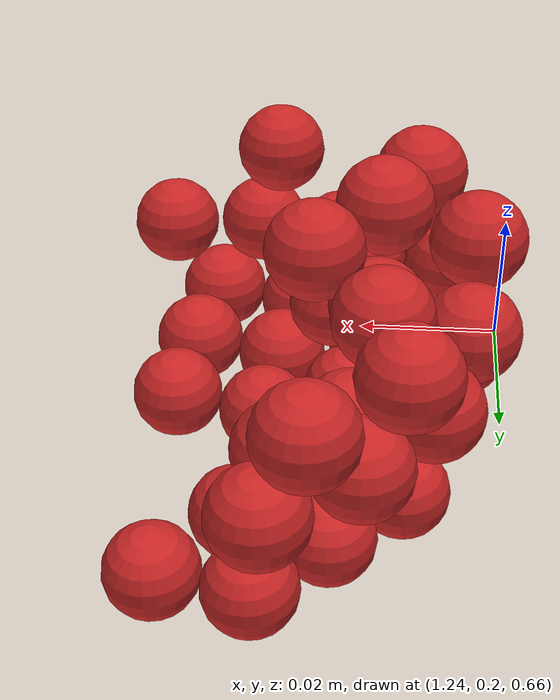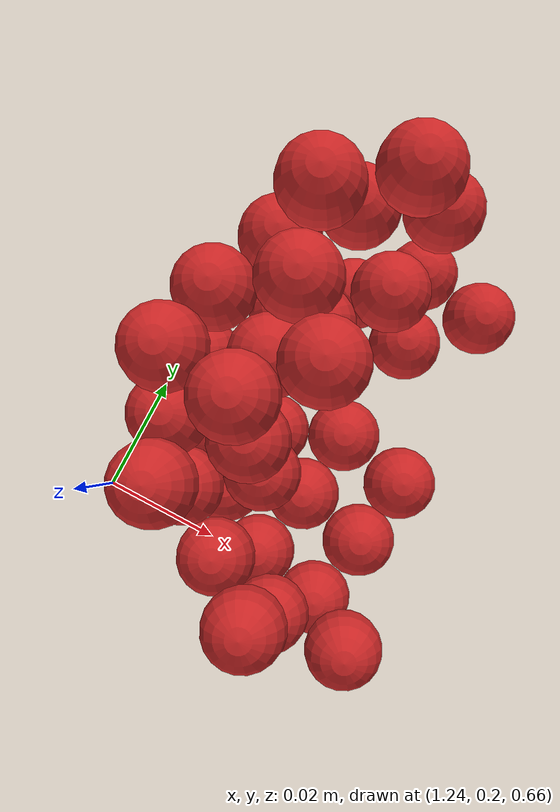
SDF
<sdf version="1.4">
 <world name="default">
  <model name="ground_plane">
   <static>1</static>
   <link name="link">
    <collision name="collision">
     <geometry><plane><normal>0 0 1</normal><size>100 100</size></plane></geometry>
     <surface><friction><ode><mu>100</mu><mu2>50</mu2></ode></friction></surface>
    </collision>
    <visual name="visual">
     <cast_shadows>0</cast_shadows>
     <geometry><plane><normal>0 0 1</normal><size>100 100</size></plane></geometry>
     <material>
      <script><uri>file://media/materials/scripts/gazebo.material</uri><name>Gazebo/Grey</name></script>
     </material>
    </visual>
    <velocity_decay><linear>0</linear><angular>0</angular></velocity_decay>
   </link>
  </model>
  <model name="sphere1">
   <pose>-0.033563 -0.052771 -0.021208 -0.03485 0.01136 -0.002758</pose>
   <link name="link">
    <pose>1.28814 0.232149 0.722288 0 -0 0</pose>
    <inertial>
     <mass>0.001</mass>
     <inertia><ixx>0.004</ixx><ixy>0</ixy><ixz>0</ixz><iyy>0.004</iyy><iyz>0</iyz><izz>0.004</izz></inertia>
    </inertial>
    <collision name="collision">
     <surface>
      <contact><ode><kp>1e+10</kp><kd>1</kd></ode></contact>
      <friction><ode><mu>0.01</mu><mu2>0.01</mu2></ode></friction>
     </surface>
     <geometry><sphere><radius>0.006</radius></sphere></geometry>
    </collision>
    <visual name="visual">
     <geometry><sphere><radius>0.006</radius></sphere></geometry>
     <material>
      <script><uri>file://media/materials/scripts/gazebo.material</uri><name>Gazebo/Red</name></script>
     </material>
    </visual>
    <velocity_decay><linear>0</linear><angular>0</angular></velocity_decay>
   </link>
   <static>0</static>
  </model>
  <model name="sphere2">
   <pose>-0.050173 -0.010075 -0.040103 0.01037 -0.001392 0.001848</pose>
   <link name="link">
    <pose>1.30014 0.232149 0.722288 0 -0 0</pose>
    <inertial>
     <mass>0.001</mass>
     <inertia><ixx>0.004</ixx><ixy>0</ixy><ixz>0</ixz><iyy>0.004</iyy><iyz>0</iyz><izz>0.004</izz></inertia>
    </inertial>
    <collision name="collision">
     <surface>
      <contact><ode><kp>1e+10</kp><kd>1</kd></ode></contact>
      <friction><ode><mu>0.01</mu><mu2>0.01</mu2></ode></friction>
     </surface>
     <geometry><sphere><radius>0.006</radius></sphere></geometry>
    </collision>
    <visual name="visual">
     <geometry><sphere><radius>0.006</radius></sphere></geometry>
     <material>
      <script><uri>file://media/materials/scripts/gazebo.material</uri><name>Gazebo/Red</name></script>
     </material>
    </visual>
    <velocity_decay><linear>0</linear><angular>0</angular></velocity_decay>
   </link>
   <static>0</static>
  </model>
  <model name="sphere3">
   <pose>-0.028546 -0.044237 -0.027117 -0.0037 0.01088 0.004462</pose>
   <link name="link">
    <pose>1.27614 0.244149 0.722288 0 -0 0</pose>
    <inertial>
     <mass>0.001</mass>
     <inertia><ixx>0.004</ixx><ixy>0</ixy><ixz>0</ixz><iyy>0.004</iyy><iyz>0</iyz><izz>0.004</izz></inertia>
    </inertial>
    <collision name="collision">
     <surface>
      <contact><ode><kp>1e+10</kp><kd>1</kd></ode></contact>
      <friction><ode><mu>0.01</mu><mu2>0.01</mu2></ode></friction>
     </surface>
     <geometry><sphere><radius>0.006</radius></sphere></geometry>
    </collision>
    <visual name="visual">
     <geometry><sphere><radius>0.006</radius></sphere></geometry>
     <material>
      <script><uri>file://media/materials/scripts/gazebo.material</uri><name>Gazebo/Red</name></script>
     </material>
    </visual>
    <velocity_decay><linear>0</linear><angular>0</angular></velocity_decay>
   </link>
   <static>0</static>
  </model>
  <model name="sphere5">
   <pose>-0.028078 -0.06221 -0.053725 -0.030292 -0.005125 -0.000564</pose>
   <link name="link">
    <pose>1.30014 0.244149 0.722288 0 -0 0</pose>
    <inertial>
     <mass>0.001</mass>
     <inertia><ixx>0.004</ixx><ixy>0</ixy><ixz>0</ixz><iyy>0.004</iyy><iyz>0</iyz><izz>0.004</izz></inertia>
    </inertial>
    <collision name="collision">
     <surface>
      <contact><ode><kp>1e+10</kp><kd>1</kd></ode></contact>
      <friction><ode><mu>0.01</mu><mu2>0.01</mu2></ode></friction>
     </surface>
     <geometry><sphere><radius>0.006</radius></sphere></geometry>
    </collision>
    <visual name="visual">
     <geometry><sphere><radius>0.006</radius></sphere></geometry>
     <material>
      <script><uri>file://media/materials/scripts/gazebo.material</uri><name>Gazebo/Red</name></script>
     </material>
    </visual>
    <velocity_decay><linear>0</linear><angular>0</angular></velocity_decay>
   </link>
   <static>0</static>
  </model>
  <model name="sphere6">
   <pose>-0.032901 -0.03095 -0.022914 -0.000748 0.003173 -0.000882</pose>
   <link name="link">
    <pose>1.27614 0.256149 0.722288 0 -0 0</pose>
    <inertial>
     <mass>0.001</mass>
     <inertia><ixx>0.004</ixx><ixy>0</ixy><ixz>0</ixz><iyy>0.004</iyy><iyz>0</iyz><izz>0.004</izz></inertia>
    </inertial>
    <collision name="collision">
     <surface>
      <contact><ode><kp>1e+10</kp><kd>1</kd></ode></contact>
      <friction><ode><mu>0.01</mu><mu2>0.01</mu2></ode></friction>
     </surface>
     <geometry><sphere><radius>0.006</radius></sphere></geometry>
    </collision>
    <visual name="visual">
     <geometry><sphere><radius>0.006</radius></sphere></geometry>
     <material>
      <script><uri>file://media/materials/scripts/gazebo.material</uri><name>Gazebo/Red</name></script>
     </material>
    </visual>
    <velocity_decay><linear>0</linear><angular>0</angular></velocity_decay>
   </link>
   <static>0</static>
  </model>
  <model name="sphere7">
   <pose>-0.045309 -0.013871 -0.03616 0.003074 0.015054 0.000154</pose>
   <link name="link">
    <pose>1.28814 0.256149 0.722288 0 -0 0</pose>
    <inertial>
     <mass>0.001</mass>
     <inertia><ixx>0.004</ixx><ixy>0</ixy><ixz>0</ixz><iyy>0.004</iyy><iyz>0</iyz><izz>0.004</izz></inertia>
    </inertial>
    <collision name="collision">
     <surface>
      <contact><ode><kp>1e+10</kp><kd>1</kd></ode></contact>
      <friction><ode><mu>0.01</mu><mu2>0.01</mu2></ode></friction>
     </surface>
     <geometry><sphere><radius>0.006</radius></sphere></geometry>
    </collision>
    <visual name="visual">
     <geometry><sphere><radius>0.006</radius></sphere></geometry>
     <material>
      <script><uri>file://media/materials/scripts/gazebo.material</uri><name>Gazebo/Red</name></script>
     </material>
    </visual>
    <velocity_decay><linear>0</linear><angular>0</angular></velocity_decay>
   </link>
   <static>0</static>
  </model>
  <model name="sphere8">
   <pose>-0.018767 -0.053673 -0.057546 0.003739 -0.001351 0.000569</pose>
   <link name="link">
    <pose>1.30014 0.256149 0.722288 0 -0 0</pose>
    <inertial>
     <mass>0.001</mass>
     <inertia><ixx>0.004</ixx><ixy>0</ixy><ixz>0</ixz><iyy>0.004</iyy><iyz>0</iyz><izz>0.004</izz></inertia>
    </inertial>
    <collision name="collision">
     <surface>
      <contact><ode><kp>1e+10</kp><kd>1</kd></ode></contact>
      <friction><ode><mu>0.01</mu><mu2>0.01</mu2></ode></friction>
     </surface>
     <geometry><sphere><radius>0.006</radius></sphere></geometry>
    </collision>
    <visual name="visual">
     <geometry><sphere><radius>0.006</radius></sphere></geometry>
     <material>
      <script><uri>file://media/materials/scripts/gazebo.material</uri><name>Gazebo/Red</name></script>
     </material>
    </visual>
    <velocity_decay><linear>0</linear><angular>0</angular></velocity_decay>
   </link>
   <static>0</static>
  </model>
  <model name="sphere10">
   <pose>-0.044418 -0.017472 -0.045919 -0.00333 0.011076 0.00042</pose>
   <link name="link">
    <pose>1.28814 0.232149 0.734288 0 -0 0</pose>
    <inertial>
     <mass>0.001</mass>
     <inertia><ixx>0.004</ixx><ixy>0</ixy><ixz>0</ixz><iyy>0.004</iyy><iyz>0</iyz><izz>0.004</izz></inertia>
    </inertial>
    <collision name="collision">
     <surface>
      <contact><ode><kp>1e+10</kp><kd>1</kd></ode></contact>
      <friction><ode><mu>0.01</mu><mu2>0.01</mu2></ode></friction>
     </surface>
     <geometry><sphere><radius>0.006</radius></sphere></geometry>
    </collision>
    <visual name="visual">
     <geometry><sphere><radius>0.006</radius></sphere></geometry>
     <material>
      <script><uri>file://media/materials/scripts/gazebo.material</uri><name>Gazebo/Red</name></script>
     </material>
    </visual>
    <velocity_decay><linear>0</linear><angular>0</angular></velocity_decay>
   </link>
   <static>0</static>
  </model>
  <model name="sphere11">
   <pose>-0.052728 -0.062204 -0.032076 -0.055371 0.015929 -0.000204</pose>
   <link name="link">
    <pose>1.30014 0.232149 0.734288 0 -0 0</pose>
    <inertial>
     <mass>0.001</mass>
     <inertia><ixx>0.004</ixx><ixy>0</ixy><ixz>0</ixz><iyy>0.004</iyy><iyz>0</iyz><izz>0.004</izz></inertia>
    </inertial>
    <collision name="collision">
     <surface>
      <contact><ode><kp>1e+10</kp><kd>1</kd></ode></contact>
      <friction><ode><mu>0.01</mu><mu2>0.01</mu2></ode></friction>
     </surface>
     <geometry><sphere><radius>0.006</radius></sphere></geometry>
    </collision>
    <visual name="visual">
     <geometry><sphere><radius>0.006</radius></sphere></geometry>
     <material>
      <script><uri>file://media/materials/scripts/gazebo.material</uri><name>Gazebo/Red</name></script>
     </material>
    </visual>
    <velocity_decay><linear>0</linear><angular>0</angular></velocity_decay>
   </link>
   <static>0</static>
  </model>
  <model name="sphere14">
   <pose>-0.015831 -0.045538 -0.065508 -0.018202 -0.002482 0.000292</pose>
   <link name="link">
    <pose>1.30014 0.244149 0.734288 0 -0 0</pose>
    <inertial>
     <mass>0.001</mass>
     <inertia><ixx>0.004</ixx><ixy>0</ixy><ixz>0</ixz><iyy>0.004</iyy><iyz>0</iyz><izz>0.004</izz></inertia>
    </inertial>
    <collision name="collision">
     <surface>
      <contact><ode><kp>1e+10</kp><kd>1</kd></ode></contact>
      <friction><ode><mu>0.01</mu><mu2>0.01</mu2></ode></friction>
     </surface>
     <geometry><sphere><radius>0.006</radius></sphere></geometry>
    </collision>
    <visual name="visual">
     <geometry><sphere><radius>0.006</radius></sphere></geometry>
     <material>
      <script><uri>file://media/materials/scripts/gazebo.material</uri><name>Gazebo/Red</name></script>
     </material>
    </visual>
    <velocity_decay><linear>0</linear><angular>0</angular></velocity_decay>
   </link>
   <static>0</static>
  </model>
  <model name="sphere16">
   <pose>-0.032975 0.000135 -0.056876 0.010404 0.009764 -0.000229</pose>
   <link name="link">
    <pose>1.28814 0.256149 0.734288 0 -0 0</pose>
    <inertial>
     <mass>0.001</mass>
     <inertia><ixx>0.004</ixx><ixy>0</ixy><ixz>0</ixz><iyy>0.004</iyy><iyz>0</iyz><izz>0.004</izz></inertia>
    </inertial>
    <collision name="collision">
     <surface>
      <contact><ode><kp>1e+10</kp><kd>1</kd></ode></contact>
      <friction><ode><mu>0.01</mu><mu2>0.01</mu2></ode></friction>
     </surface>
     <geometry><sphere><radius>0.006</radius></sphere></geometry>
    </collision>
    <visual name="visual">
     <geometry><sphere><radius>0.006</radius></sphere></geometry>
     <material>
      <script><uri>file://media/materials/scripts/gazebo.material</uri><name>Gazebo/Red</name></script>
     </material>
    </visual>
    <velocity_decay><linear>0</linear><angular>0</angular></velocity_decay>
   </link>
   <static>0</static>
  </model>
  <model name="sphere17">
   <pose>-0.033035 0.015816 -0.044256 0.023969 0.021809 0.000223</pose>
   <link name="link">
    <pose>1.30014 0.256149 0.734288 0 -0 0</pose>
    <inertial>
     <mass>0.001</mass>
     <inertia><ixx>0.004</ixx><ixy>0</ixy><ixz>0</ixz><iyy>0.004</iyy><iyz>0</iyz><izz>0.004</izz></inertia>
    </inertial>
    <collision name="collision">
     <surface>
      <contact><ode><kp>1e+10</kp><kd>1</kd></ode></contact>
      <friction><ode><mu>0.01</mu><mu2>0.01</mu2></ode></friction>
     </surface>
     <geometry><sphere><radius>0.006</radius></sphere></geometry>
    </collision>
    <visual name="visual">
     <geometry><sphere><radius>0.006</radius></sphere></geometry>
     <material>
      <script><uri>file://media/materials/scripts/gazebo.material</uri><name>Gazebo/Red</name></script>
     </material>
    </visual>
    <velocity_decay><linear>0</linear><angular>0</angular></velocity_decay>
   </link>
   <static>0</static>
  </model>
  <model name="sphere18">
   <pose>-0.03367 -0.007862 -0.06187 -0.005235 0.01192 0.000236</pose>
   <link name="link">
    <pose>1.27614 0.232149 0.746288 0 -0 0</pose>
    <inertial>
     <mass>0.001</mass>
     <inertia><ixx>0.004</ixx><ixy>0</ixy><ixz>0</ixz><iyy>0.004</iyy><iyz>0</iyz><izz>0.004</izz></inertia>
    </inertial>
    <collision name="collision">
     <surface>
      <contact><ode><kp>1e+10</kp><kd>1</kd></ode></contact>
      <friction><ode><mu>0.01</mu><mu2>0.01</mu2></ode></friction>
     </surface>
     <geometry><sphere><radius>0.006</radius></sphere></geometry>
    </collision>
    <visual name="visual">
     <geometry><sphere><radius>0.006</radius></sphere></geometry>
     <material>
      <script><uri>file://media/materials/scripts/gazebo.material</uri><name>Gazebo/Red</name></script>
     </material>
    </visual>
    <velocity_decay><linear>0</linear><angular>0</angular></velocity_decay>
   </link>
   <static>0</static>
  </model>
  <model name="sphere20">
   <pose>-0.025354 -0.026452 -0.072197 0.012664 -0.000145 0.000498</pose>
   <link name="link">
    <pose>1.30014 0.232149 0.746288 0 -0 0</pose>
    <inertial>
     <mass>0.001</mass>
     <inertia><ixx>0.004</ixx><ixy>0</ixy><ixz>0</ixz><iyy>0.004</iyy><iyz>0</iyz><izz>0.004</izz></inertia>
    </inertial>
    <collision name="collision">
     <surface>
      <contact><ode><kp>1e+10</kp><kd>1</kd></ode></contact>
      <friction><ode><mu>0.01</mu><mu2>0.01</mu2></ode></friction>
     </surface>
     <geometry><sphere><radius>0.006</radius></sphere></geometry>
    </collision>
    <visual name="visual">
     <geometry><sphere><radius>0.006</radius></sphere></geometry>
     <material>
      <script><uri>file://media/materials/scripts/gazebo.material</uri><name>Gazebo/Red</name></script>
     </material>
    </visual>
    <velocity_decay><linear>0</linear><angular>0</angular></velocity_decay>
   </link>
   <static>0</static>
  </model>
  <model name="sphere21">
   <pose>-0.023843 -0.036713 -0.051757 -0.00138 0.000324 -2.7e-05</pose>
   <link name="link">
    <pose>1.27614 0.244149 0.746288 0 -0 0</pose>
    <inertial>
     <mass>0.001</mass>
     <inertia><ixx>0.004</ixx><ixy>0</ixy><ixz>0</ixz><iyy>0.004</iyy><iyz>0</iyz><izz>0.004</izz></inertia>
    </inertial>
    <collision name="collision">
     <surface>
      <contact><ode><kp>1e+10</kp><kd>1</kd></ode></contact>
      <friction><ode><mu>0.01</mu><mu2>0.01</mu2></ode></friction>
     </surface>
     <geometry><sphere><radius>0.006</radius></sphere></geometry>
    </collision>
    <visual name="visual">
     <geometry><sphere><radius>0.006</radius></sphere></geometry>
     <material>
      <script><uri>file://media/materials/scripts/gazebo.material</uri><name>Gazebo/Red</name></script>
     </material>
    </visual>
    <velocity_decay><linear>0</linear><angular>0</angular></velocity_decay>
   </link>
   <static>0</static>
  </model>
  <model name="sphere22">
   <pose>-0.027319 -0.016902 -0.080034 0.006578 0.000397 -0.00035</pose>
   <link name="link">
    <pose>1.28814 0.244149 0.746288 0 -0 0</pose>
    <inertial>
     <mass>0.001</mass>
     <inertia><ixx>0.004</ixx><ixy>0</ixy><ixz>0</ixz><iyy>0.004</iyy><iyz>0</iyz><izz>0.004</izz></inertia>
    </inertial>
    <collision name="collision">
     <surface>
      <contact><ode><kp>1e+10</kp><kd>1</kd></ode></contact>
      <friction><ode><mu>0.01</mu><mu2>0.01</mu2></ode></friction>
     </surface>
     <geometry><sphere><radius>0.006</radius></sphere></geometry>
    </collision>
    <visual name="visual">
     <geometry><sphere><radius>0.006</radius></sphere></geometry>
     <material>
      <script><uri>file://media/materials/scripts/gazebo.material</uri><name>Gazebo/Red</name></script>
     </material>
    </visual>
    <velocity_decay><linear>0</linear><angular>0</angular></velocity_decay>
   </link>
   <static>0</static>
  </model>
  <model name="sphere23">
   <pose>-0.029251 -0.025642 -0.080473 0.00396 -0.000479 -0.000592</pose>
   <link name="link">
    <pose>1.30014 0.244149 0.746288 0 -0 0</pose>
    <inertial>
     <mass>0.001</mass>
     <inertia><ixx>0.004</ixx><ixy>0</ixy><ixz>0</ixz><iyy>0.004</iyy><iyz>0</iyz><izz>0.004</izz></inertia>
    </inertial>
    <collision name="collision">
     <surface>
      <contact><ode><kp>1e+10</kp><kd>1</kd></ode></contact>
      <friction><ode><mu>0.01</mu><mu2>0.01</mu2></ode></friction>
     </surface>
     <geometry><sphere><radius>0.006</radius></sphere></geometry>
    </collision>
    <visual name="visual">
     <geometry><sphere><radius>0.006</radius></sphere></geometry>
     <material>
      <script><uri>file://media/materials/scripts/gazebo.material</uri><name>Gazebo/Red</name></script>
     </material>
    </visual>
    <velocity_decay><linear>0</linear><angular>0</angular></velocity_decay>
   </link>
   <static>0</static>
  </model>
  <model name="sphere25">
   <pose>-0.036337 -0.00955 -0.061237 0.000253 -0.001555 -0.000263</pose>
   <link name="link">
    <pose>1.28814 0.256149 0.746288 0 -0 0</pose>
    <inertial>
     <mass>0.001</mass>
     <inertia><ixx>0.004</ixx><ixy>0</ixy><ixz>0</ixz><iyy>0.004</iyy><iyz>0</iyz><izz>0.004</izz></inertia>
    </inertial>
    <collision name="collision">
     <surface>
      <contact><ode><kp>1e+10</kp><kd>1</kd></ode></contact>
      <friction><ode><mu>0.01</mu><mu2>0.01</mu2></ode></friction>
     </surface>
     <geometry><sphere><radius>0.006</radius></sphere></geometry>
    </collision>
    <visual name="visual">
     <geometry><sphere><radius>0.006</radius></sphere></geometry>
     <material>
      <script><uri>file://media/materials/scripts/gazebo.material</uri><name>Gazebo/Red</name></script>
     </material>
    </visual>
    <velocity_decay><linear>0</linear><angular>0</angular></velocity_decay>
   </link>
   <static>0</static>
  </model>
  <model name="sphere26">
   <pose>-0.028305 -0.030061 -0.078205 -0.001105 0.000296 -0.000266</pose>
   <link name="link">
    <pose>1.30014 0.256149 0.746288 0 -0 0</pose>
    <inertial>
     <mass>0.001</mass>
     <inertia><ixx>0.004</ixx><ixy>0</ixy><ixz>0</ixz><iyy>0.004</iyy><iyz>0</iyz><izz>0.004</izz></inertia>
    </inertial>
    <collision name="collision">
     <surface>
      <contact><ode><kp>1e+10</kp><kd>1</kd></ode></contact>
      <friction><ode><mu>0.01</mu><mu2>0.01</mu2></ode></friction>
     </surface>
     <geometry><sphere><radius>0.006</radius></sphere></geometry>
    </collision>
    <visual name="visual">
     <geometry><sphere><radius>0.006</radius></sphere></geometry>
     <material>
      <script><uri>file://media/materials/scripts/gazebo.material</uri><name>Gazebo/Red</name></script>
     </material>
    </visual>
    <velocity_decay><linear>0</linear><angular>0</angular></velocity_decay>
   </link>
   <static>0</static>
  </model>
  <model name="sphere29">
   <pose>-0.024555 -0.015755 -0.081648 0.027044 -0.004769 0.000312</pose>
   <link name="link">
    <pose>1.30014 0.232149 0.758288 0 -0 0</pose>
    <inertial>
     <mass>0.001</mass>
     <inertia><ixx>0.004</ixx><ixy>0</ixy><ixz>0</ixz><iyy>0.004</iyy><iyz>0</iyz><izz>0.004</izz></inertia>
    </inertial>
    <collision name="collision">
     <surface>
      <contact><ode><kp>1e+10</kp><kd>1</kd></ode></contact>
      <friction><ode><mu>0.01</mu><mu2>0.01</mu2></ode></friction>
     </surface>
     <geometry><sphere><radius>0.006</radius></sphere></geometry>
    </collision>
    <visual name="visual">
     <geometry><sphere><radius>0.006</radius></sphere></geometry>
     <material>
      <script><uri>file://media/materials/scripts/gazebo.material</uri><name>Gazebo/Red</name></script>
     </material>
    </visual>
    <velocity_decay><linear>0</linear><angular>0</angular></velocity_decay>
   </link>
   <static>0</static>
  </model>
  <model name="sphere31">
   <pose>-0.027336 -0.022046 -0.072235 0.003035 -0.00092 -0.000655</pose>
   <link name="link">
    <pose>1.28814 0.244149 0.758288 0 -0 0</pose>
    <inertial>
     <mass>0.001</mass>
     <inertia><ixx>0.004</ixx><ixy>0</ixy><ixz>0</ixz><iyy>0.004</iyy><iyz>0</iyz><izz>0.004</izz></inertia>
    </inertial>
    <collision name="collision">
     <surface>
      <contact><ode><kp>1e+10</kp><kd>1</kd></ode></contact>
      <friction><ode><mu>0.01</mu><mu2>0.01</mu2></ode></friction>
     </surface>
     <geometry><sphere><radius>0.006</radius></sphere></geometry>
    </collision>
    <visual name="visual">
     <geometry><sphere><radius>0.006</radius></sphere></geometry>
     <material>
      <script><uri>file://media/materials/scripts/gazebo.material</uri><name>Gazebo/Red</name></script>
     </material>
    </visual>
    <velocity_decay><linear>0</linear><angular>0</angular></velocity_decay>
   </link>
   <static>0</static>
  </model>
  <model name="sphere34">
   <pose>-0.038778 0.007409 -0.055137 0.009541 0.029321 0.000222</pose>
   <link name="link">
    <pose>1.28814 0.256149 0.758288 0 -0 0</pose>
    <inertial>
     <mass>0.001</mass>
     <inertia><ixx>0.004</ixx><ixy>0</ixy><ixz>0</ixz><iyy>0.004</iyy><iyz>0</iyz><izz>0.004</izz></inertia>
    </inertial>
    <collision name="collision">
     <surface>
      <contact><ode><kp>1e+10</kp><kd>1</kd></ode></contact>
      <friction><ode><mu>0.01</mu><mu2>0.01</mu2></ode></friction>
     </surface>
     <geometry><sphere><radius>0.006</radius></sphere></geometry>
    </collision>
    <visual name="visual">
     <geometry><sphere><radius>0.006</radius></sphere></geometry>
     <material>
      <script><uri>file://media/materials/scripts/gazebo.material</uri><name>Gazebo/Red</name></script>
     </material>
    </visual>
    <velocity_decay><linear>0</linear><angular>0</angular></velocity_decay>
   </link>
   <static>0</static>
  </model>
  <model name="sphere35">
   <pose>-0.019421 -0.039285 -0.082713 -0.007987 0.004656 0.000726</pose>
   <link name="link">
    <pose>1.30014 0.256149 0.758288 0 -0 0</pose>
    <inertial>
     <mass>0.001</mass>
     <inertia><ixx>0.004</ixx><ixy>0</ixy><ixz>0</ixz><iyy>0.004</iyy><iyz>0</iyz><izz>0.004</izz></inertia>
    </inertial>
    <collision name="collision">
     <surface>
      <contact><ode><kp>1e+10</kp><kd>1</kd></ode></contact>
      <friction><ode><mu>0.01</mu><mu2>0.01</mu2></ode></friction>
     </surface>
     <geometry><sphere><radius>0.006</radius></sphere></geometry>
    </collision>
    <visual name="visual">
     <geometry><sphere><radius>0.006</radius></sphere></geometry>
     <material>
      <script><uri>file://media/materials/scripts/gazebo.material</uri><name>Gazebo/Red</name></script>
     </material>
    </visual>
    <velocity_decay><linear>0</linear><angular>0</angular></velocity_decay>
   </link>
   <static>0</static>
  </model>
  <model name="sphere37">
   <pose>-0.020075 -0.015986 -0.101192 0.003858 -0.005467 0.001609</pose>
   <link name="link">
    <pose>1.28814 0.232149 0.770288 0 -0 0</pose>
    <inertial>
     <mass>0.001</mass>
     <inertia><ixx>0.004</ixx><ixy>0</ixy><ixz>0</ixz><iyy>0.004</iyy><iyz>0</iyz><izz>0.004</izz></inertia>
    </inertial>
    <collision name="collision">
     <surface>
      <contact><ode><kp>1e+10</kp><kd>1</kd></ode></contact>
      <friction><ode><mu>0.01</mu><mu2>0.01</mu2></ode></friction>
     </surface>
     <geometry><sphere><radius>0.006</radius></sphere></geometry>
    </collision>
    <visual name="visual">
     <geometry><sphere><radius>0.006</radius></sphere></geometry>
     <material>
      <script><uri>file://media/materials/scripts/gazebo.material</uri><name>Gazebo/Red</name></script>
     </material>
    </visual>
    <velocity_decay><linear>0</linear><angular>0</angular></velocity_decay>
   </link>
   <static>0</static>
  </model>
  <model name="sphere39">
   <pose>-0.031011 -0.015107 -0.088257 -0.001722 0.001549 -0.002915</pose>
   <link name="link">
    <pose>1.27614 0.244149 0.770288 0 -0 0</pose>
    <inertial>
     <mass>0.001</mass>
     <inertia><ixx>0.004</ixx><ixy>0</ixy><ixz>0</ixz><iyy>0.004</iyy><iyz>0</iyz><izz>0.004</izz></inertia>
    </inertial>
    <collision name="collision">
     <surface>
      <contact><ode><kp>1e+10</kp><kd>1</kd></ode></contact>
      <friction><ode><mu>0.01</mu><mu2>0.01</mu2></ode></friction>
     </surface>
     <geometry><sphere><radius>0.006</radius></sphere></geometry>
    </collision>
    <visual name="visual">
     <geometry><sphere><radius>0.006</radius></sphere></geometry>
     <material>
      <script><uri>file://media/materials/scripts/gazebo.material</uri><name>Gazebo/Red</name></script>
     </material>
    </visual>
    <velocity_decay><linear>0</linear><angular>0</angular></velocity_decay>
   </link>
   <static>0</static>
  </model>
  <model name="sphere40">
   <pose>-0.026836 -0.014503 -0.087059 -0.000768 -0.004772 0.000233</pose>
   <link name="link">
    <pose>1.28814 0.244149 0.770288 0 -0 0</pose>
    <inertial>
     <mass>0.001</mass>
     <inertia><ixx>0.004</ixx><ixy>0</ixy><ixz>0</ixz><iyy>0.004</iyy><iyz>0</iyz><izz>0.004</izz></inertia>
    </inertial>
    <collision name="collision">
     <surface>
      <contact><ode><kp>1e+10</kp><kd>1</kd></ode></contact>
      <friction><ode><mu>0.01</mu><mu2>0.01</mu2></ode></friction>
     </surface>
     <geometry><sphere><radius>0.006</radius></sphere></geometry>
    </collision>
    <visual name="visual">
     <geometry><sphere><radius>0.006</radius></sphere></geometry>
     <material>
      <script><uri>file://media/materials/scripts/gazebo.material</uri><name>Gazebo/Red</name></script>
     </material>
    </visual>
    <velocity_decay><linear>0</linear><angular>0</angular></velocity_decay>
   </link>
   <static>0</static>
  </model>
  <model name="sphere43">
   <pose>-0.024625 -0.014752 -0.102595 0.007009 0.001565 1.4e-05</pose>
   <link name="link">
    <pose>1.28814 0.256149 0.770288 0 -0 0</pose>
    <inertial>
     <mass>0.001</mass>
     <inertia><ixx>0.004</ixx><ixy>0</ixy><ixz>0</ixz><iyy>0.004</iyy><iyz>0</iyz><izz>0.004</izz></inertia>
    </inertial>
    <collision name="collision">
     <surface>
      <contact><ode><kp>1e+10</kp><kd>1</kd></ode></contact>
      <friction><ode><mu>0.01</mu><mu2>0.01</mu2></ode></friction>
     </surface>
     <geometry><sphere><radius>0.006</radius></sphere></geometry>
    </collision>
    <visual name="visual">
     <geometry><sphere><radius>0.006</radius></sphere></geometry>
     <material>
      <script><uri>file://media/materials/scripts/gazebo.material</uri><name>Gazebo/Red</name></script>
     </material>
    </visual>
    <velocity_decay><linear>0</linear><angular>0</angular></velocity_decay>
   </link>
   <static>0</static>
  </model>
  <model name="sphere47">
   <pose>-0.026752 0.026882 -0.098572 0.070335 0.016465 -0.004749</pose>
   <link name="link">
    <pose>1.30014 0.232149 0.782288 0 -0 0</pose>
    <inertial>
     <mass>0.001</mass>
     <inertia><ixx>0.004</ixx><ixy>0</ixy><ixz>0</ixz><iyy>0.004</iyy><iyz>0</iyz><izz>0.004</izz></inertia>
    </inertial>
    <collision name="collision">
     <surface>
      <contact><ode><kp>1e+10</kp><kd>1</kd></ode></contact>
      <friction><ode><mu>0.01</mu><mu2>0.01</mu2></ode></friction>
     </surface>
     <geometry><sphere><radius>0.006</radius></sphere></geometry>
    </collision>
    <visual name="visual">
     <geometry><sphere><radius>0.006</radius></sphere></geometry>
     <material>
      <script><uri>file://media/materials/scripts/gazebo.material</uri><name>Gazebo/Red</name></script>
     </material>
    </visual>
    <velocity_decay><linear>0</linear><angular>0</angular></velocity_decay>
   </link>
   <static>0</static>
  </model>
  <model name="sphere48">
   <pose>-0.017905 -0.005968 -0.088062 -0.001688 -0.001502 0.000836</pose>
   <link name="link">
    <pose>1.27614 0.244149 0.782288 0 -0 0</pose>
    <inertial>
     <mass>0.001</mass>
     <inertia><ixx>0.004</ixx><ixy>0</ixy><ixz>0</ixz><iyy>0.004</iyy><iyz>0</iyz><izz>0.004</izz></inertia>
    </inertial>
    <collision name="collision">
     <surface>
      <contact><ode><kp>1e+10</kp><kd>1</kd></ode></contact>
      <friction><ode><mu>0.01</mu><mu2>0.01</mu2></ode></friction>
     </surface>
     <geometry><sphere><radius>0.006</radius></sphere></geometry>
    </collision>
    <visual name="visual">
     <geometry><sphere><radius>0.006</radius></sphere></geometry>
     <material>
      <script><uri>file://media/materials/scripts/gazebo.material</uri><name>Gazebo/Red</name></script>
     </material>
    </visual>
    <velocity_decay><linear>0</linear><angular>0</angular></velocity_decay>
   </link>
   <static>0</static>
  </model>
  <model name="sphere49">
   <pose>-0.015774 0.001764 -0.112682 0.000649 0.001805 -0.000364</pose>
   <link name="link">
    <pose>1.28814 0.244149 0.782288 0 -0 0</pose>
    <inertial>
     <mass>0.001</mass>
     <inertia><ixx>0.004</ixx><ixy>0</ixy><ixz>0</ixz><iyy>0.004</iyy><iyz>0</iyz><izz>0.004</izz></inertia>
    </inertial>
    <collision name="collision">
     <surface>
      <contact><ode><kp>1e+10</kp><kd>1</kd></ode></contact>
      <friction><ode><mu>0.01</mu><mu2>0.01</mu2></ode></friction>
     </surface>
     <geometry><sphere><radius>0.006</radius></sphere></geometry>
    </collision>
    <visual name="visual">
     <geometry><sphere><radius>0.006</radius></sphere></geometry>
     <material>
      <script><uri>file://media/materials/scripts/gazebo.material</uri><name>Gazebo/Red</name></script>
     </material>
    </visual>
    <velocity_decay><linear>0</linear><angular>0</angular></velocity_decay>
   </link>
   <static>0</static>
  </model>
  <model name="sphere51">
   <pose>-0.022819 0.005984 -0.071197 0.00229 0.020777 0.000516</pose>
   <link name="link">
    <pose>1.27614 0.256149 0.782288 0 -0 0</pose>
    <inertial>
     <mass>0.001</mass>
     <inertia><ixx>0.004</ixx><ixy>0</ixy><ixz>0</ixz><iyy>0.004</iyy><iyz>0</iyz><izz>0.004</izz></inertia>
    </inertial>
    <collision name="collision">
     <surface>
      <contact><ode><kp>1e+10</kp><kd>1</kd></ode></contact>
      <friction><ode><mu>0.01</mu><mu2>0.01</mu2></ode></friction>
     </surface>
     <geometry><sphere><radius>0.006</radius></sphere></geometry>
    </collision>
    <visual name="visual">
     <geometry><sphere><radius>0.006</radius></sphere></geometry>
     <material>
      <script><uri>file://media/materials/scripts/gazebo.material</uri><name>Gazebo/Red</name></script>
     </material>
    </visual>
    <velocity_decay><linear>0</linear><angular>0</angular></velocity_decay>
   </link>
   <static>0</static>
  </model>
  <model name="sphere55">
   <pose>-0.023596 6.3e-05 -0.095135 -0.000812 0.000381 -0.000536</pose>
   <link name="link">
    <pose>1.28814 0.232149 0.794288 0 -0 0</pose>
    <inertial>
     <mass>0.001</mass>
     <inertia><ixx>0.004</ixx><ixy>0</ixy><ixz>0</ixz><iyy>0.004</iyy><iyz>0</iyz><izz>0.004</izz></inertia>
    </inertial>
    <collision name="collision">
     <surface>
      <contact><ode><kp>1e+10</kp><kd>1</kd></ode></contact>
      <friction><ode><mu>0.01</mu><mu2>0.01</mu2></ode></friction>
     </surface>
     <geometry><sphere><radius>0.006</radius></sphere></geometry>
    </collision>
    <visual name="visual">
     <geometry><sphere><radius>0.006</radius></sphere></geometry>
     <material>
      <script><uri>file://media/materials/scripts/gazebo.material</uri><name>Gazebo/Red</name></script>
     </material>
    </visual>
    <velocity_decay><linear>0</linear><angular>0</angular></velocity_decay>
   </link>
   <static>0</static>
  </model>
  <model name="sphere57">
   <pose>-0.029874 -0.008179 -0.104703 -0.001444 -0.000211 -0.001553</pose>
   <link name="link">
    <pose>1.27614 0.244149 0.794288 0 -0 0</pose>
    <inertial>
     <mass>0.001</mass>
     <inertia><ixx>0.004</ixx><ixy>0</ixy><ixz>0</ixz><iyy>0.004</iyy><iyz>0</iyz><izz>0.004</izz></inertia>
    </inertial>
    <collision name="collision">
     <surface>
      <contact><ode><kp>1e+10</kp><kd>1</kd></ode></contact>
      <friction><ode><mu>0.01</mu><mu2>0.01</mu2></ode></friction>
     </surface>
     <geometry><sphere><radius>0.006</radius></sphere></geometry>
    </collision>
    <visual name="visual">
     <geometry><sphere><radius>0.006</radius></sphere></geometry>
     <material>
      <script><uri>file://media/materials/scripts/gazebo.material</uri><name>Gazebo/Red</name></script>
     </material>
    </visual>
    <velocity_decay><linear>0</linear><angular>0</angular></velocity_decay>
   </link>
   <static>0</static>
  </model>
  <model name="sphere60">
   <pose>-0.017863 0.002719 -0.108355 0.005363 0.000389 0.000485</pose>
   <link name="link">
    <pose>1.27614 0.256149 0.794288 0 -0 0</pose>
    <inertial>
     <mass>0.001</mass>
     <inertia><ixx>0.004</ixx><ixy>0</ixy><ixz>0</ixz><iyy>0.004</iyy><iyz>0</iyz><izz>0.004</izz></inertia>
    </inertial>
    <collision name="collision">
     <surface>
      <contact><ode><kp>1e+10</kp><kd>1</kd></ode></contact>
      <friction><ode><mu>0.01</mu><mu2>0.01</mu2></ode></friction>
     </surface>
     <geometry><sphere><radius>0.006</radius></sphere></geometry>
    </collision>
    <visual name="visual">
     <geometry><sphere><radius>0.006</radius></sphere></geometry>
     <material>
      <script><uri>file://media/materials/scripts/gazebo.material</uri><name>Gazebo/Red</name></script>
     </material>
    </visual>
    <velocity_decay><linear>0</linear><angular>0</angular></velocity_decay>
   </link>
   <static>0</static>
  </model>
  <model name="sphere70">
   <pose>-0.026753 -0.019913 -0.128125 -0.005205 -0.001613 -0.000988</pose>
   <link name="link">
    <pose>1.28814 0.256149 0.806288 0 -0 0</pose>
    <inertial>
     <mass>0.001</mass>
     <inertia><ixx>0.004</ixx><ixy>0</ixy><ixz>0</ixz><iyy>0.004</iyy><iyz>0</iyz><izz>0.004</izz></inertia>
    </inertial>
    <collision name="collision">
     <surface>
      <contact><ode><kp>1e+10</kp><kd>1</kd></ode></contact>
      <friction><ode><mu>0.01</mu><mu2>0.01</mu2></ode></friction>
     </surface>
     <geometry><sphere><radius>0.006</radius></sphere></geometry>
    </collision>
    <visual name="visual">
     <geometry><sphere><radius>0.006</radius></sphere></geometry>
     <material>
      <script><uri>file://media/materials/scripts/gazebo.material</uri><name>Gazebo/Red</name></script>
     </material>
    </visual>
    <velocity_decay><linear>0</linear><angular>0</angular></velocity_decay>
   </link>
   <static>0</static>
  </model>
  <model name="sphere78">
   <pose>-0.015766 0.007829 -0.117417 0.004682 0.004612 -0.000125</pose>
   <link name="link">
    <pose>1.27614 0.256149 0.818288 0 -0 0</pose>
    <inertial>
     <mass>0.001</mass>
     <inertia><ixx>0.004</ixx><ixy>0</ixy><ixz>0</ixz><iyy>0.004</iyy><iyz>0</iyz><izz>0.004</izz></inertia>
    </inertial>
    <collision name="collision">
     <surface>
      <contact><ode><kp>1e+10</kp><kd>1</kd></ode></contact>
      <friction><ode><mu>0.01</mu><mu2>0.01</mu2></ode></friction>
     </surface>
     <geometry><sphere><radius>0.006</radius></sphere></geometry>
    </collision>
    <visual name="visual">
     <geometry><sphere><radius>0.006</radius></sphere></geometry>
     <material>
      <script><uri>file://media/materials/scripts/gazebo.material</uri><name>Gazebo/Red</name></script>
     </material>
    </visual>
    <velocity_decay><linear>0</linear><angular>0</angular></velocity_decay>
   </link>
   <static>0</static>
  </model>
  <model name="sphere81">
   <pose>-0.018249 -0.009531 -0.132634 0.00059 -0.00073 0.000783</pose>
   <link name="link">
    <pose>1.27614 0.232149 0.830288 0 -0 0</pose>
    <inertial>
     <mass>0.001</mass>
     <inertia><ixx>0.004</ixx><ixy>0</ixy><ixz>0</ixz><iyy>0.004</iyy><iyz>0</iyz><izz>0.004</izz></inertia>
    </inertial>
    <collision name="collision">
     <surface>
      <contact><ode><kp>1e+10</kp><kd>1</kd></ode></contact>
      <friction><ode><mu>0.01</mu><mu2>0.01</mu2></ode></friction>
     </surface>
     <geometry><sphere><radius>0.006</radius></sphere></geometry>
    </collision>
    <visual name="visual">
     <geometry><sphere><radius>0.006</radius></sphere></geometry>
     <material>
      <script><uri>file://media/materials/scripts/gazebo.material</uri><name>Gazebo/Red</name></script>
     </material>
    </visual>
    <velocity_decay><linear>0</linear><angular>0</angular></velocity_decay>
   </link>
   <static>0</static>
  </model>
  <model name="sphere88">
   <pose>-0.019908 -0.011308 -0.148035 -0.002204 -7.6e-05 0.000942</pose>
   <link name="link">
    <pose>1.28814 0.256149 0.830288 0 -0 0</pose>
    <inertial>
     <mass>0.001</mass>
     <inertia><ixx>0.004</ixx><ixy>0</ixy><ixz>0</ixz><iyy>0.004</iyy><iyz>0</iyz><izz>0.004</izz></inertia>
    </inertial>
    <collision name="collision">
     <surface>
      <contact><ode><kp>1e+10</kp><kd>1</kd></ode></contact>
      <friction><ode><mu>0.01</mu><mu2>0.01</mu2></ode></friction>
     </surface>
     <geometry><sphere><radius>0.006</radius></sphere></geometry>
    </collision>
    <visual name="visual">
     <geometry><sphere><radius>0.006</radius></sphere></geometry>
     <material>
      <script><uri>file://media/materials/scripts/gazebo.material</uri><name>Gazebo/Red</name></script>
     </material>
    </visual>
    <velocity_decay><linear>0</linear><angular>0</angular></velocity_decay>
   </link>
   <static>0</static>
  </model>
  <model name="sphere93">
   <pose>-0.023106 0.009225 -0.144128 0.000109 0.000655 -0.000983</pose>
   <link name="link">
    <pose>1.27614 0.244149 0.842288 0 -0 0</pose>
    <inertial>
     <mass>0.001</mass>
     <inertia><ixx>0.004</ixx><ixy>0</ixy><ixz>0</ixz><iyy>0.004</iyy><iyz>0</iyz><izz>0.004</izz></inertia>
    </inertial>
    <collision name="collision">
     <surface>
      <contact><ode><kp>1e+10</kp><kd>1</kd></ode></contact>
      <friction><ode><mu>0.01</mu><mu2>0.01</mu2></ode></friction>
     </surface>
     <geometry><sphere><radius>0.006</radius></sphere></geometry>
    </collision>
    <visual name="visual">
     <geometry><sphere><radius>0.006</radius></sphere></geometry>
     <material>
      <script><uri>file://media/materials/scripts/gazebo.material</uri><name>Gazebo/Red</name></script>
     </material>
    </visual>
    <velocity_decay><linear>0</linear><angular>0</angular></velocity_decay>
   </link>
   <static>0</static>
  </model>
 </world>
</sdf>
